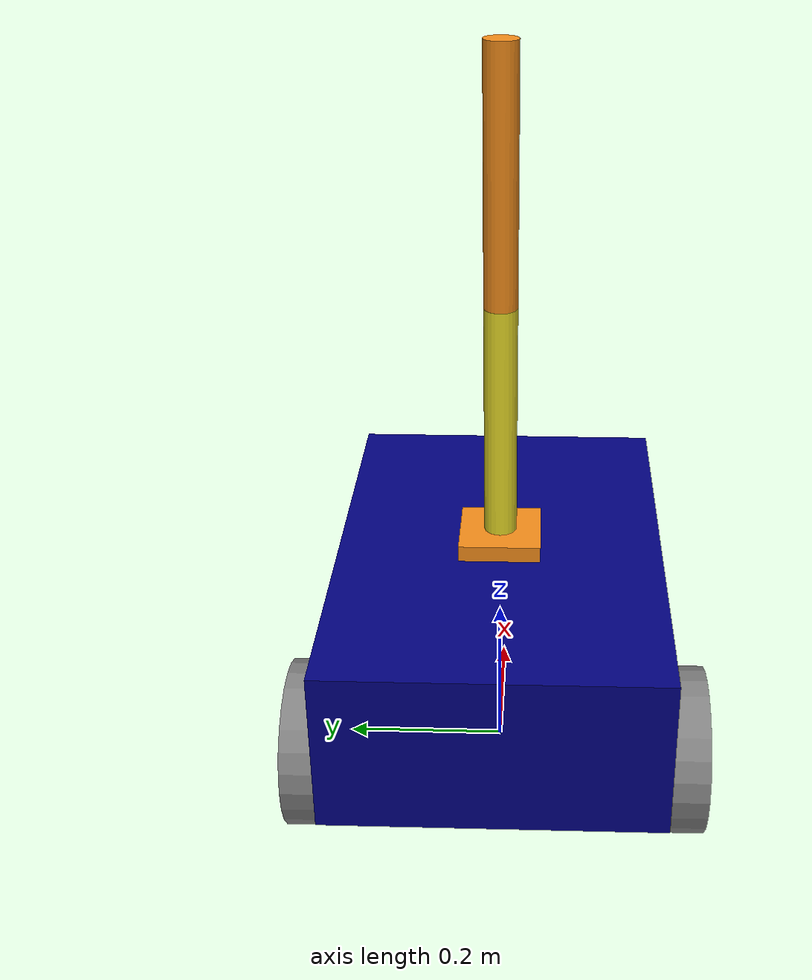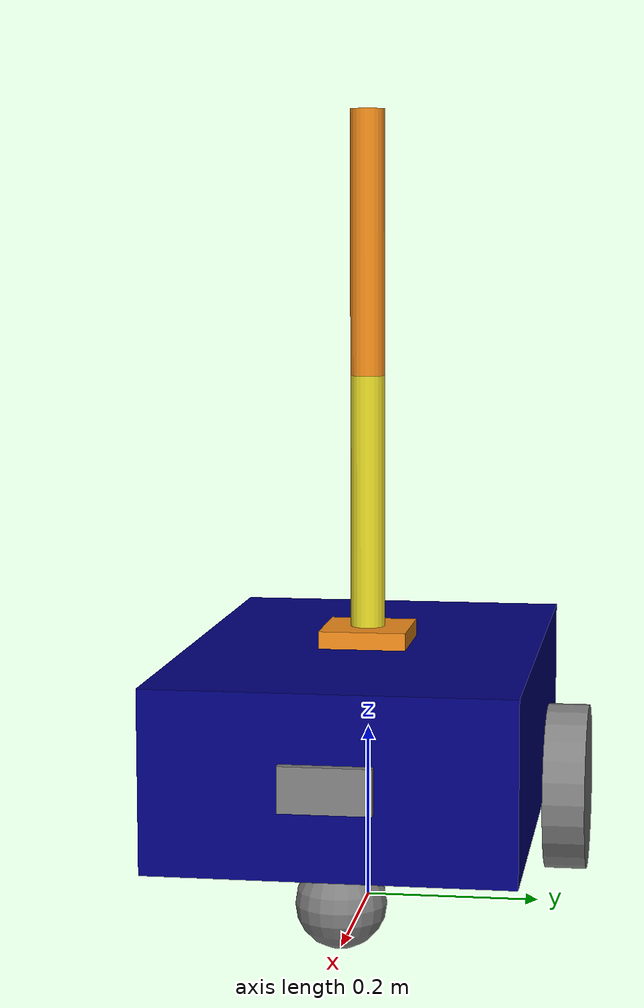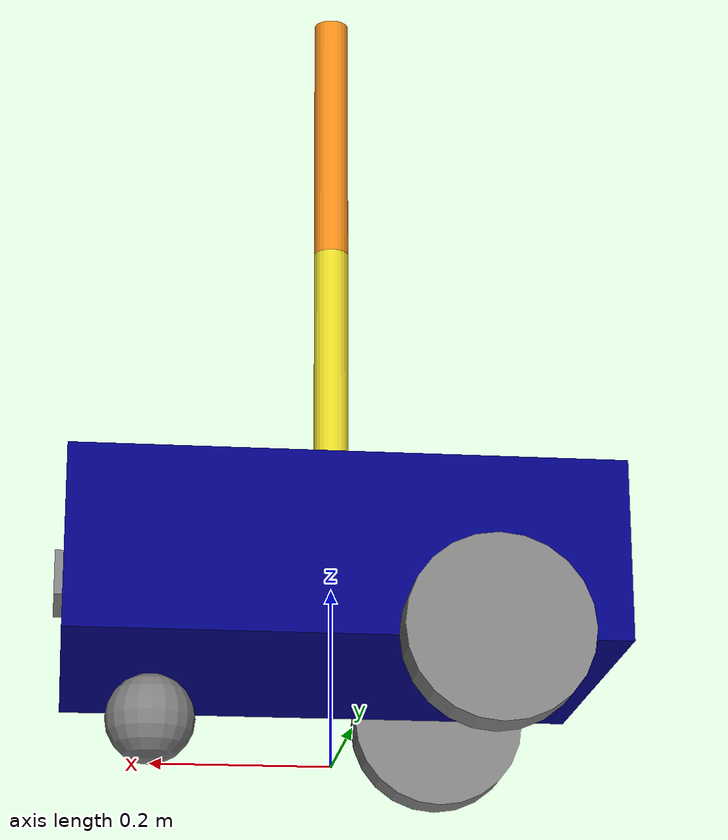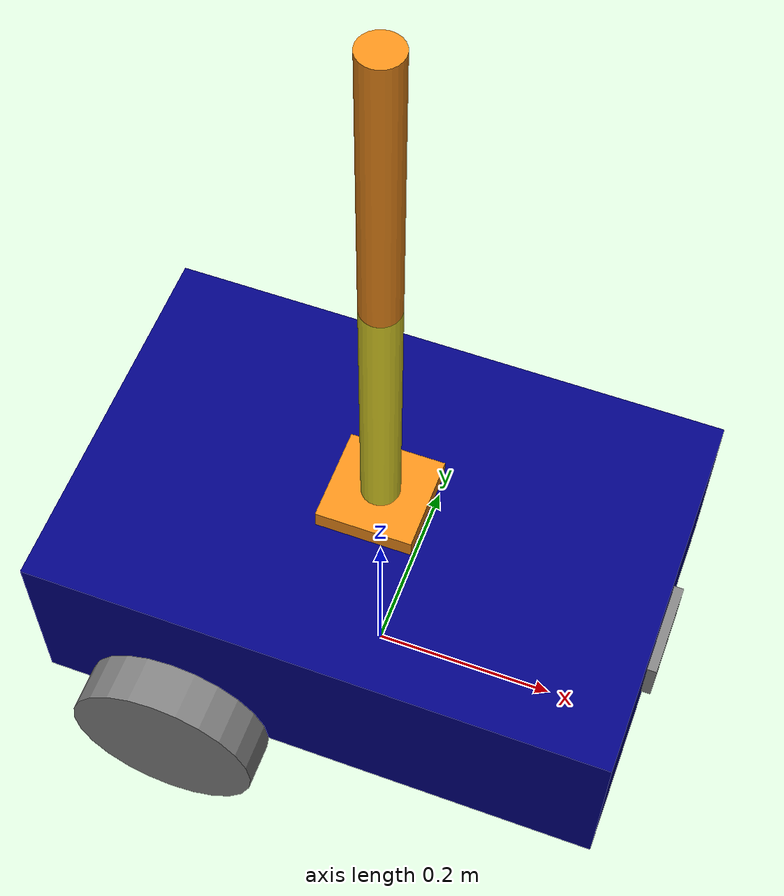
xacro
<?xml version="1.0"?>
<robot name="my_robot" xmlns:xacro="http://www.ros.org/wiki/xacro"> <!-- Aqui ponemos el nombre del robot, cómo lo queramos llamar -->

    <xacro:include filename="common_properties.xacro" />
    <xacro:include filename="arm.xacro" />
    <xacro:include filename="mobile_base.xacro" />
    <xacro:include filename="mobile_base_gazebo.xacro" />
    <xacro:include filename="camera.xacro" />

</robot>

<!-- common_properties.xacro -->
<robot xmlns:xacro="http://www.ros.org/wiki/xacro">

    <material name="blue">
        <color rgba="0 0 0.5 1" />
    </material>

    <material name="grey">
        <color rgba="0.5 0.5 0.5 1" />
    </material>

    <material name="red">
        <color rgba="0.8 0 0 1" />
    </material>

    <xacro:macro name="box_inertia" params="m x y z o_xyz o_rpy">
        <inertial>
            <mass value="${m}" />
            <origin xyz="${o_xyz}" rpy="${o_rpy}" />
            <inertia ixx="${(m/12) * (y*y + z*z)}" ixy="0" ixz="0"
                     iyy="${(m/12) * (x*x + z*z)}" iyz="0"
                     izz="${(m/12) * (x*x + y*y)}" />
        </inertial>
    </xacro:macro>

    <xacro:macro name="cylinder_inertia" params="m r l o_xyz o_rpy">
        <inertial>
            <mass value="${m}" />
            <origin xyz="${o_xyz}" rpy="${o_rpy}" />
            <inertia ixx="${(m/12) * (3*r*r + l*l)}" ixy="0" ixz="0"
                     iyy="${(m/12) * (3*r*r + l*l)}" iyz="0"
                     izz="${(m/2) * (r*r)}" />
        </inertial>
    </xacro:macro>

    <xacro:macro name="sphere_inertia" params="m r"> <!--The inertia formula of a solid sphere is used in this case, instead of a hollow sphere-->
        <inertial>
            <mass value="${m}" />
            <inertia ixx="${(2*m/5) * (r*r)}" ixy="0" ixz="0"
                     iyy="${(2*m/5) * (r*r)}" iyz="0"
                     izz="${(2*m/5) * (r*r)}" />
        </inertial>
    </xacro:macro>

</robot>

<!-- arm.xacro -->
<robot xmlns:xacro="https://www.ros.org/wiki/xacro">

    <!-- Declaration of links' properties-->
    <xacro:property name="base_length" value="0.1" />
    <xacro:property name="base_width" value="0.1" />
    <xacro:property name="base_height" value="0.02" />
    <xacro:property name="arm_radius" value="0.02" />
    <xacro:property name="arm_length" value="0.3" />

    <!-- Declaration of links -->

    <link name="arm_base_link">
        <visual>
            <geometry>
                <box size="${base_length} ${base_width} ${base_height}" />
            </geometry>
            <origin xyz="0 0 ${base_height / 2.0}" rpy="0 0 0" />
            <material name="orange" />
        </visual>

        <collision>
            <geometry>
                <box size="${base_length} ${base_width} ${base_height}" />
            </geometry>
            <origin xyz="0 0 0" rpy="0 0 0" />
        </collision>

        <xacro:box_inertia m="0.5" x="${base_length}" y="${base_width}" z="${base_height}"
                            o_xyz="0 0 0" o_rpy="0 0 0" />

    </link>

    <xacro:macro name="cylindrical_link" params="prefix material">
        <link name="${prefix}_link">
            <visual>
                <geometry>
                    <cylinder radius="${arm_radius}" length="${arm_length}" />
                </geometry>
                <origin xyz="0 0 ${arm_length / 2.0}" rpy="0 0 0" />
                <material name="${material}" />
            </visual>

            <collision>
                <geometry>
                    <cylinder radius="${arm_radius}" length="${arm_length}" />
                </geometry>
                <origin xyz="0 0 ${arm_length / 2.0}" rpy="0 0 0" />
            </collision>

            <xacro:cylinder_inertia m="0.3" r="${arm_radius}" l="${arm_length}"
                                    o_xyz="0 0 ${arm_length / 2.0}" o_rpy="0 0 0" />
        </link>
    </xacro:macro>

    <xacro:cylindrical_link prefix="forearm" material="yellow" />
    <xacro:cylindrical_link prefix="hand" material="orange" />

    <joint name="arm_base_forearm_joint" type="revolute">
        <parent link="arm_base_link" />
        <child link="forearm_link" />

        <origin xyz="0 0 ${base_height / 2.0}" rpy="0 0 0" />

        <axis xyz="0 1 0" />

        <limit
            lower="0"
            upper="${pi/2.0}"
            effort="100"
            velocity="100"
        />

        <dynamics friction="0.3" damping="0.3" />

    </joint>

    <joint name="forearm_hand_joint" type="revolute">
        <parent link="forearm_link" />
        <child link="hand_link" />
        <origin xyz="0 0 ${arm_length}" rpy="0 0 0" />

        <axis xyz="0 1 0" />

        <limit
            lower="0"
            upper="${pi/2.0}"
            effort="100"
            velocity="100"
        />

        <dynamics friction="0.3" damping="0.3" />

    </joint>

</robot>

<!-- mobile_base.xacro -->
<robot xmlns:xacro="http://www.ros.org/wiki/xacro">

    <xacro:property name="base_length" value="0.6" /> <!--This is a variable that we will use along the program-->
    <xacro:property name="base_width" value="0.4" />
    <xacro:property name="base_height" value="0.2" />
    <xacro:property name="wheel_radius" value="0.1" />
    <xacro:property name="wheel_length" value="0.05" />

    <link name="base_footprint" />

    <link name="base_link"> <!-- Este es el base link que siempre hay que poner del robot -->
        <visual> <!-- Creamos un elemento visual, para que se pueda visualizar -->
            <geometry> <!--Aqui decimos que es del tipo geometria-->
                <box size="${base_length} ${base_width} ${base_height}" /> <!-- Esto es una caja de 60cm de largo, 40cm de ancho y 20cm de alto -->
            </geometry>
            <origin xyz="0 0 ${base_height / 2.0}" rpy="0 0 0" /> <!--Aqui se determina el origen de los ejes del objeto creado (el offset). RPY es Roll(x), Pitch(y) and Yaw(z)-->
            <material name="blue" />
        </visual>

        <collision>
            <geometry>
                <box size="${base_length} ${base_width} ${base_height}" />
            </geometry>
            <origin xyz="0 0 ${base_height / 2.0}" rpy="0 0 0" />
        </collision>

        <xacro:box_inertia m="5.0" x="${base_length}" y="${base_width}" z="${base_height}"
                           o_xyz="0 0 ${base_height / 2.0}" o_rpy="0 0 0" />
    </link>

    <xacro:macro name="wheel_link" params="prefix">
        <link name="${prefix}_wheel_link">
            <visual>
                <geometry>
                    <cylinder radius="${wheel_radius}" length="${wheel_length}" />
                </geometry>
                <origin xyz="0 0 0" rpy="${pi / 2.0} 0 0" /> <!--3. Then, we rotate the visual to make it look as we want-->
                <material name="grey" />
            </visual>

            <collision>
                <geometry>
                    <sphere radius="${wheel_radius}" />
                </geometry>
                <origin xyz="0 0 0" rpy="0 0 0" />
            </collision>

            <xacro:cylinder_inertia m="1.0" r="${wheel_radius}" l="${wheel_length}"
                                    o_xyz="0 0 0" o_rpy="${pi / 2.0} 0 0" />
        </link>
    </xacro:macro>

    <xacro:wheel_link prefix="right" />
    <xacro:wheel_link prefix="left" />

    <link name="caster_wheel_link">
        <visual>
            <geometry>
                <sphere radius="${wheel_radius / 2.0}" />
            </geometry>
            <material name="grey" />
        </visual>

        <collision>
            <geometry>
                <sphere radius="${wheel_radius / 2.0}" />
            </geometry>
        </collision>

        <xacro:sphere_inertia m="0.5" r="${wheel_radius / 2.0}" />
    </link>

    <joint name="base_joint" type="fixed">
        <parent link="base_footprint" />
        <child link="base_link" />
        <origin xyz="0 0 ${wheel_radius}" rpy="0 0 0" />
    </joint>

    <joint name="base_right_wheel_joint" type="continuous">
        <parent link="base_link" />
        <child link="right_wheel_link" />
        <origin xyz="${-base_length / 4.0} ${-(base_width + wheel_length) / 2.0} 0" rpy="0 0 0" /> <!--1. First we tune this one, to set the frame where we want in respect to the other-->
        <axis xyz="0 1 0" /> <!--2. Then, we set the rotation axis of the joint-->
    </joint>

    <joint name="base_left_wheel_joint" type="continuous">
        <parent link="base_link" />
        <child link="left_wheel_link" />
        <origin xyz="${-base_length / 4.0} ${(base_width + wheel_length) / 2.0} 0" rpy="0 0 0" />
        <axis xyz="0 1 0" />
    </joint>

    <joint name="base_caster_wheel_joint" type="fixed">
        <parent link="base_link" />
        <child link="caster_wheel_link" />
        <origin xyz="${base_length / 3.0} 0 ${-wheel_radius / 2.0}" rpy="0 0 0" />
    </joint>

    <joint name="base_arm_base_link" type="fixed">
        <parent link="base_link" />
        <child link="arm_base_link" />
        <origin xyz="0 0 ${base_height}" rpy="0 0 0" />
    </joint>

</robot>

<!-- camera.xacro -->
<robot xmlns:xacro="http://www.ros.org/wiki/xacro">

    <xacro:property name="camera_length" value="0.01" />
    <xacro:property name="camera_width" value="0.1" />
    <xacro:property name="camera_height" value="0.05" />

    <link name="camera_link">
        <visual>
            <geometry>
                <box size="${camera_length} ${camera_width} ${camera_height}" />
            </geometry>
            <material name="grey" />
        </visual>
        <collision>
            <geometry>
                <box size="${camera_length} ${camera_width} ${camera_height}" />
            </geometry>
        </collision>
        <xacro:box_inertia m="0.1" x="${camera_length}" y="${camera_width}" z="${camera_height}"
                                    o_xyz="0 0 0" o_rpy="0 0 0" />
    </link>

    <joint name="base_camera_joint" type="fixed">
        <parent link="base_link" />
        <child link="camera_link" />
        <origin xyz="${(base_length + camera_length)/2.0} 0 ${base_height/2.0}" rpy="0 0 0" />
    </joint>

    <link name="camera_link_optical" />

    <joint name="camera_optical_joint" type="fixed">
        <origin xyz="0 0 0" rpy="${-pi/2} 0 ${-pi/2}"/>
        <parent link="camera_link"/>
        <child link="camera_link_optical"/>
    </joint>

    <gazebo reference="camera_link">
        <sensor name="camera" type="camera">
            <camera>
                <horizontal_fov>1.3962634</horizontal_fov>
                <image>
                    <width>640</width>
                    <height>488</height>
                    <format>R8G8B8</format>
                </image>
                <clip>
                    <near>0.1</near>
                    <far>15</far>
                </clip>
                <noise>
                    <type>gaussian</type>
                    <mean>0.0</mean>
                    <stddev>0.007</stddev>
                </noise>
                <optical_frame_id>camera_link_optical</optical_frame_id>
                <camera_info_topic>camera/camera_info</camera_info_topic> <!-- This is the Gazebo topic -->
            </camera>
            <always_on>1</always_on>
            <update_rate>20</update_rate> <!-- Hertz -->
            <visualize>true</visualize>
            <topic>camera/image_raw</topic>
        </sensor>
    </gazebo>

</robot>
